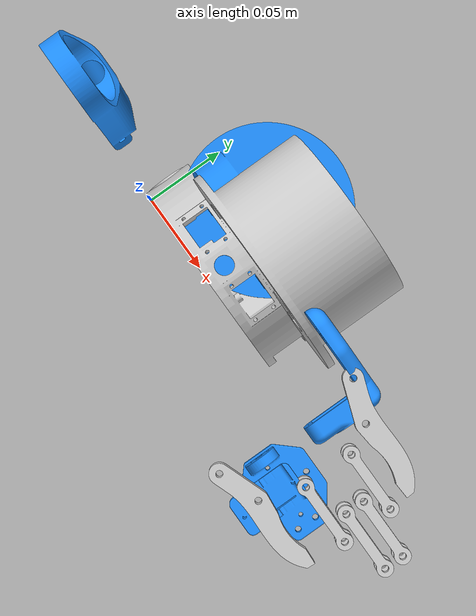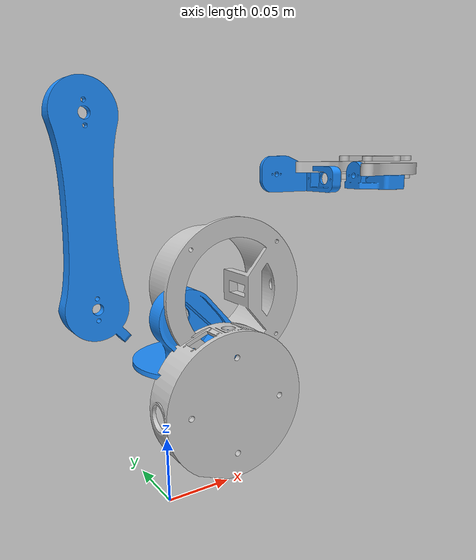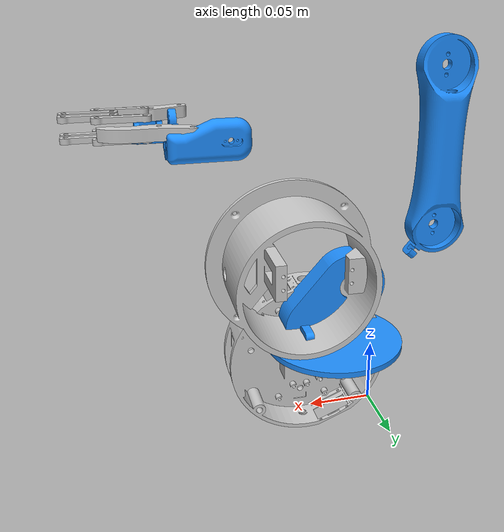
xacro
<?xml version="1.0"?>
<robot xmlns:xacro="http://www.ros.org/wiki/xacro" name="miniarm">
    <xacro:arg name="initial_positions_file" default="$(find miniarm_moveit_config)/config/initial_positions.yaml" />

    <!-- Import miniarm urdf file -->
    <xacro:include filename="$(find miniarm_description)/urdf/miniarm.urdf" />

    <!-- Import miniarm ros2_control description -->
    <xacro:include filename="miniarm.ros2_control.xacro" />

    <xacro:miniarm_ros2_control name="MiniarmMockSystem" initial_positions_file="$(arg initial_positions_file)"/>
</robot>

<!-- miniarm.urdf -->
<!-- Mini Arm URDF. A lot of this was custom written to allow the gripper to behave like -->
<!-- it actually does. Modifications should be made with care                            -->
<robot name="miniarm" xmlns:xacro="http://www.ros.org/wiki/xacro">

  <!-- CAD meshes are exported in millimeters. URDF origins are in meters.
       Mesh origins and joint axes still require physical calibration. -->

  <!-- Custom robot colors -->
  <material name="grey">
    <color rgba="0.8 0.8 0.8 1.0"/>
  </material>

  <material name="sky-blue">
    <color rgba="0.12 0.56 1.0 1.0"/>
  </material>

  <!-- Electronics Link -->
  <link name="miniarm_electronics">
    <visual>
      <geometry>
        <mesh filename="package://miniarm_description/meshes/electronics_deck.STL" scale="0.001 0.001 0.001" />
      </geometry>
      <material name="grey"/>
    </visual>
    <collision>
      <geometry>
        <mesh filename="package://miniarm_description/meshes/electronics_deck.STL" scale="0.001 0.001 0.001" />
      </geometry>
    </collision>
  </link>

  <!-- Base Link -->
  <link name="miniarm_base">
    <visual>
      <geometry>
        <mesh filename="package://miniarm_description/meshes/Base.STL" scale="0.001 0.001 0.001" />
      </geometry>
      <material name="base-grey">
        <color rgba="0.8 0.8 0.8 1.0"/>
      </material>
    </visual>
    <collision>
      <geometry>
        <mesh filename="package://miniarm_description/meshes/Base.STL" scale="0.001 0.001 0.001" />
      </geometry>
    </collision>
  </link>

  <joint name="miniarm_joint0" type="fixed">
    <origin xyz="0.015 0.025 0.082" rpy="0 0 0" />
    <parent link="miniarm_electronics" />
    <child link="miniarm_base" />
  </joint>

  <!-- Link 1 -->
  <link name="miniarm_link1">
    <visual>
      <geometry>
        <mesh filename="package://miniarm_description/meshes/link_1.STL" scale="0.001 0.001 0.001" />
      </geometry>
      <material name="sky-blue"/>
    </visual>
    <collision>
      <geometry>
        <mesh filename="package://miniarm_description/meshes/link_1.STL" scale="0.001 0.001 0.001" />
      </geometry>
    </collision>
  </link>

  <joint name="miniarm_joint1" type="revolute">
    <origin xyz="-0.015 -0.024 0.004" rpy="1.5707963267948966 0 1.5707963267948966" />
    <parent link="miniarm_base" />
    <child link="miniarm_link1" />
    <axis xyz="0 1 0" />
    <limit effort="10" lower="-1.5708" upper="1.5708" velocity="2" />
  </joint>

  <!-- Link 2 -->
  <link name="miniarm_link2">
    <visual>
      <geometry>
        <mesh filename="package://miniarm_description/meshes/link_2.STL" scale="0.001 0.001 0.001" />
      </geometry>
      <material name="sky-blue"/>
    </visual>
    <collision>
      <geometry>
        <mesh filename="package://miniarm_description/meshes/link_2.STL" scale="0.001 0.001 0.001" />
      </geometry>
    </collision>
  </link>

  <joint name="miniarm_joint2" type="revolute">
    <origin xyz="0.0 0.0415 -0.015" rpy="0 1.5708 0" />
    <parent link="miniarm_link1" />
    <child link="miniarm_link2" />
    <axis xyz="0 0 1" />
    <limit effort="10" lower="-1.5708" upper="1.5708" velocity="2" />
  </joint>

  <!-- Link 3 -->
  <link name="miniarm_link3">
    <visual>
      <geometry>
        <mesh filename="package://miniarm_description/meshes/link_3.STL" scale="0.001 0.001 0.001" />
      </geometry>
      <material name="sky-blue"/>
    </visual>
    <collision>
      <geometry>
        <mesh filename="package://miniarm_description/meshes/link_3.STL" scale="0.001 0.001 0.001" />
      </geometry>
    </collision>
  </link>

  <joint name="miniarm_joint3" type="revolute">
    <origin xyz="0.0 0.12 0" rpy="0 3.1416 1.5708" />
    <parent link="miniarm_link2" />
    <child link="miniarm_link3" />
    <axis xyz="0 0 1" />
    <limit effort="10" lower="-0.785" upper="2.3561" velocity="2" />
  </joint>

  <!-- Link 4 -->
  <link name="miniarm_link4">
    <visual>
      <geometry>
        <mesh filename="package://miniarm_description/meshes/link_4.STL" scale="0.001 0.001 0.001" />
      </geometry>
      <material name="sky-blue"/>
    </visual>
    <collision>
      <geometry>
        <mesh filename="package://miniarm_description/meshes/link_4.STL" scale="0.001 0.001 0.001" />
      </geometry>
    </collision>
  </link>

  <joint name="miniarm_joint4" type="revolute">
    <origin xyz="-0.0055 0.09 0.0135" rpy="0 0 0" />
    <parent link="miniarm_link3" />
    <child link="miniarm_link4" />
    <axis xyz="0 1 0" />
    <limit effort="10" lower="-1.5708" upper="1.5708" velocity="2" />
  </joint>

  <!-- Link 5 -->
  <link name="miniarm_link5">
    <visual>
      <geometry>
        <mesh filename="package://miniarm_description/meshes/link_5.STL" scale="0.001 0.001 0.001" />
      </geometry>
      <material name="sky-blue"/>
    </visual>
    <collision>
      <geometry>
        <mesh filename="package://miniarm_description/meshes/link_5.STL" scale="0.001 0.001 0.001" />
      </geometry>
    </collision>
  </link>

  <joint name="miniarm_joint5" type="revolute">
    <origin xyz="0.005 0.028 -0.01" rpy="0 3.141592653589793 -1.5708" />
    <parent link="miniarm_link4" />
    <child link="miniarm_link5" />
    <axis xyz="0 0 1" />
    <limit effort="10" lower="-1.5708" upper="1.5708" velocity="2" />
  </joint>

  <!-- Gripper -->
  <link name="miniarm_gripper_link">
    <visual>
      <geometry>
        <mesh filename="package://miniarm_description/meshes/link_6.STL" scale="0.001 0.001 0.001" />
      </geometry>
      <material name="sky-blue"/>
    </visual>
    <collision>
      <geometry>
        <mesh filename="package://miniarm_description/meshes/link_6.STL" scale="0.001 0.001 0.001" />
      </geometry>
    </collision>
  </link>

  <joint name="miniarm_gripper_link_joint" type="revolute">
    <origin xyz="0.042 0.004 -0.006" rpy="0 1.5708 0" />
    <parent link="miniarm_link5" />
    <child link="miniarm_gripper_link" />
    <axis xyz="0 0 1" />
    <limit effort="10" lower="-1.5708" upper="1.5708" velocity="2" />
  </joint>

  <link name="miniarm_left_knuckle_link">
    <visual>
      <geometry>
        <mesh filename="package://miniarm_description/meshes/gripper_link.STL" scale="0.001 0.001 0.001" />
      </geometry>
      <material name="grey"/>
    </visual>
    <collision>
      <geometry>
        <mesh filename="package://miniarm_description/meshes/gripper_link.STL" scale="0.001 0.001 0.001" />
      </geometry>
    </collision>
  </link>

  <link name="miniarm_right_knuckle_link">
    <visual>
      <geometry>
        <mesh filename="package://miniarm_description/meshes/gripper_link.STL" scale="0.001 0.001 0.001" />
      </geometry>
      <material name="grey"/>
    </visual>
    <collision>
      <geometry>
        <mesh filename="package://miniarm_description/meshes/gripper_link.STL" scale="0.001 0.001 0.001" />
      </geometry>
    </collision>
  </link>

  <link name="miniarm_left_bottom_knuckle_link">
    <visual>
      <geometry>
        <mesh filename="package://miniarm_description/meshes/gripper_link.STL" scale="0.001 0.001 0.001" />
      </geometry>
      <material name="grey"/>
    </visual>
    <collision>
      <geometry>
        <mesh filename="package://miniarm_description/meshes/gripper_link.STL" scale="0.001 0.001 0.001" />
      </geometry>
    </collision>
  </link>

  <link name="miniarm_right_bottom_knuckle_link">
    <visual>
      <geometry>
        <mesh filename="package://miniarm_description/meshes/gripper_link.STL" scale="0.001 0.001 0.001" />
      </geometry>
      <material name="grey"/>
    </visual>
    <collision>
      <geometry>
        <mesh filename="package://miniarm_description/meshes/gripper_link.STL" scale="0.001 0.001 0.001" />
      </geometry>
    </collision>
  </link>

  <link name="miniarm_left_inner_knuckle_link">
    <visual>
      <geometry>
        <mesh filename="package://miniarm_description/meshes/gripper_link.STL" scale="0.001 0.001 0.001" />
      </geometry>
      <material name="grey"/>
    </visual>
    <collision>
      <geometry>
        <mesh filename="package://miniarm_description/meshes/gripper_link.STL" scale="0.001 0.001 0.001" />
      </geometry>
    </collision>
  </link>

  <link name="miniarm_right_inner_knuckle_link">
    <visual>
      <geometry>
        <mesh filename="package://miniarm_description/meshes/gripper_link.STL" scale="0.001 0.001 0.001" />
      </geometry>
      <material name="grey"/>
    </visual>
    <collision>
      <geometry>
        <mesh filename="package://miniarm_description/meshes/gripper_link.STL" scale="0.001 0.001 0.001" />
      </geometry>
    </collision>
  </link>

  <link name="miniarm_left_inner_bottom_knuckle_link">
    <visual>
      <geometry>
        <mesh filename="package://miniarm_description/meshes/gripper_link.STL" scale="0.001 0.001 0.001" />
      </geometry>
      <material name="grey"/>
    </visual>
    <collision>
      <geometry>
        <mesh filename="package://miniarm_description/meshes/gripper_link.STL" scale="0.001 0.001 0.001" />
      </geometry>
    </collision>
  </link>

  <link name="miniarm_right_inner_bottom_knuckle_link">
    <visual>
      <geometry>
        <mesh filename="package://miniarm_description/meshes/gripper_link.STL" scale="0.001 0.001 0.001" />
      </geometry>
      <material name="grey"/>
    </visual>
    <collision>
      <geometry>
        <mesh filename="package://miniarm_description/meshes/gripper_link.STL" scale="0.001 0.001 0.001" />
      </geometry>
    </collision>
  </link>

  <link name="miniarm_left_finger_link">
    <visual>
      <geometry>
        <mesh filename="package://miniarm_description/meshes/gripper_finger.STL" scale="0.001 0.001 0.001" />
      </geometry>
      <material name="grey"/>
    </visual>
    <collision>
      <geometry>
        <mesh filename="package://miniarm_description/meshes/gripper_finger.STL" scale="0.001 0.001 0.001" />
      </geometry>
    </collision>
  </link>

  <link name="miniarm_right_finger_link">
    <visual>
      <geometry>
        <mesh filename="package://miniarm_description/meshes/gripper_finger.STL" scale="0.001 0.001 0.001" />
      </geometry>
      <material name="grey"/>
    </visual>
    <collision>
      <geometry>
        <mesh filename="package://miniarm_description/meshes/gripper_finger.STL" scale="0.001 0.001 0.001" />
      </geometry>
    </collision>
  </link>

  <joint name="miniarm_gripper_joint" type="revolute">
    <origin xyz="-0.013 0.01 0.02" rpy="0 -1.5708 0" />
    <parent link="miniarm_gripper_link" />
    <child link="miniarm_left_knuckle_link" />
    <axis xyz="0 1 0" />
    <limit effort="10" lower="-2.35619" upper="0" velocity="2" />
  </joint>

  <joint name="miniarm_right_knuckle_joint" type="continuous">
    <origin xyz="0.013 0.01 0.02" rpy="0 -1.5708 0" />
    <parent link="miniarm_gripper_link" />
    <child link="miniarm_right_knuckle_link" />
    <axis xyz="0 1 0" />
    <mimic joint="miniarm_gripper_joint" multiplier="-1" offset="0"/>
  </joint>

  <joint name="miniarm_left_bottom_knuckle_joint" type="continuous">
    <origin xyz="-0.013 -0.004 0.02" rpy="0 -1.5708 0" />
    <parent link="miniarm_gripper_link" />
    <child link="miniarm_left_bottom_knuckle_link" />
    <axis xyz="0 1 0" />
    <mimic joint="miniarm_gripper_joint" multiplier="1" offset="0"/>
  </joint>

  <joint name="miniarm_right_bottom_knuckle_joint" type="continuous">
    <origin xyz="0.013 -0.004 0.02" rpy="0 -1.5708 0" />
    <parent link="miniarm_gripper_link" />
    <child link="miniarm_right_bottom_knuckle_link" />
    <axis xyz="0 1 0" />
    <mimic joint="miniarm_gripper_joint" multiplier="-1" offset="0"/>
  </joint>

  <joint name="miniarm_left_inner_knuckle_joint" type="continuous">
    <origin xyz="-0.005 0.01 0.041" rpy="0 -1.5708 0" />
    <parent link="miniarm_gripper_link" />
    <child link="miniarm_left_inner_knuckle_link" />
    <axis xyz="0 1 0" />
    <mimic joint="miniarm_gripper_joint" multiplier="1" offset="0"/>
  </joint>

  <joint name="miniarm_right_inner_knuckle_joint" type="continuous">
    <origin xyz="0.005 0.01 0.041" rpy="0 -1.5708 0" />
    <parent link="miniarm_gripper_link" />
    <child link="miniarm_right_inner_knuckle_link" />
    <axis xyz="0 1 0" />
    <mimic joint="miniarm_gripper_joint" multiplier="-1" offset="0"/>
  </joint>

  <joint name="miniarm_left_inner_bottom_knuckle_joint" type="continuous">
    <origin xyz="-0.005 -0.004 0.041" rpy="0 -1.5708 0" />
    <parent link="miniarm_gripper_link" />
    <child link="miniarm_left_inner_bottom_knuckle_link" />
    <axis xyz="0 1 0" />
    <mimic joint="miniarm_gripper_joint" multiplier="1" offset="0"/>
  </joint>

  <joint name="miniarm_right_inner_bottom_knuckle_joint" type="continuous">
    <origin xyz="0.005 -0.004 0.041" rpy="0 -1.5708 0" />
    <parent link="miniarm_gripper_link" />
    <child link="miniarm_right_inner_bottom_knuckle_link" />
    <axis xyz="0 1 0" />
    <mimic joint="miniarm_gripper_joint" multiplier="-1" offset="0"/>
  </joint>

  <!-- Finger joints will need a 15 degree offset on top of the knuckle joint orientation -->
  <joint name="miniarm_left_finger_joint" type="continuous">
    <origin xyz="0.031 -0.001 0.0" rpy="1.22173 0 -1.5708" />
    <parent link="miniarm_left_knuckle_link" />
    <child link="miniarm_left_finger_link" />
    <axis xyz="1 0 0" />
    <limit effort="10" lower="-2.35619" upper="0" velocity="2" />
    <mimic joint="miniarm_gripper_joint" multiplier="1" offset="0"/>
  </joint>

  <joint name="miniarm_right_finger_joint" type="continuous">
    <origin xyz="0.031 -0.009 0.0" rpy="-1.9199 0 1.5708" />
    <parent link="miniarm_right_knuckle_link" />
    <child link="miniarm_right_finger_link" />
    <axis xyz="1 0 0" />
    <limit effort="10" lower="-2.35619" upper="0" velocity="2" />
    <mimic joint="miniarm_gripper_joint" multiplier="1" offset="0"/>
  </joint>

</robot>
